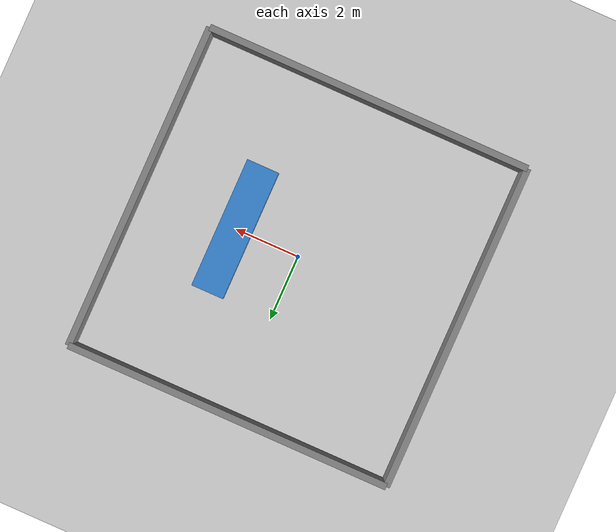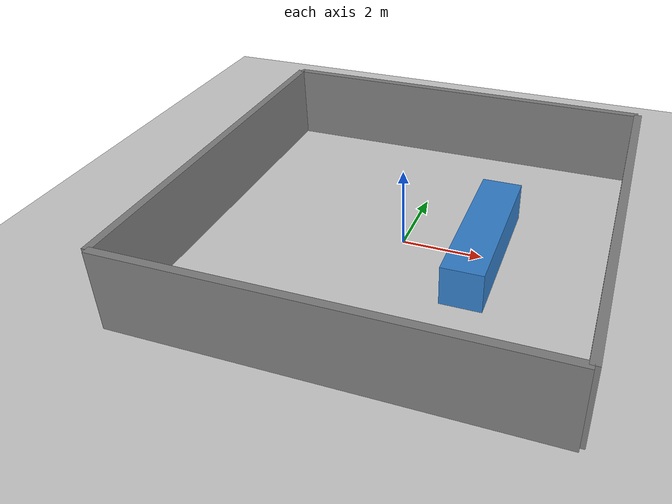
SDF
<?xml version="1.0" ?>
<sdf version="1.8">
  <world name="warehouse">
    <plugin filename="gz-sim-physics-system" name="gz::sim::systems::Physics"/>
    <plugin filename="gz-sim-scene-broadcaster-system" name="gz::sim::systems::SceneBroadcaster"/>
    <plugin filename="gz-sim-user-commands-system" name="gz::sim::systems::UserCommands"/>
    <plugin filename="gz-sim-sensors-system" name="gz::sim::systems::Sensors"><render_engine>ogre2</render_engine></plugin>

    <light type="directional" name="sun">
      <cast_shadows>true</cast_shadows>
      <pose>0 0 10 0 0 0</pose>
      <diffuse>0.8 0.8 0.8 1</diffuse>
      <specular>0.2 0.2 0.2 1</specular>
      <direction>-0.5 0.1 -0.9</direction>
    </light>

    <model name="ground_plane">
      <static>true</static>
      <link name="link">
        <collision name="collision"><geometry><plane><normal>0 0 1</normal><size>100 100</size></plane></geometry></collision>
        <visual name="visual">
          <geometry><plane><normal>0 0 1</normal><size>100 100</size></plane></geometry>
          <material><ambient>0.8 0.8 0.8 1</ambient></material>
        </visual>
      </link>
    </model>

    <model name="shelf_1">
      <static>true</static>
      <pose>2 0 0.5 0 0 0</pose>
      <link name="link">
        <collision name="collision"><geometry><box><size>1 4 1</size></box></geometry></collision>
        <visual name="visual">
          <geometry><box><size>1 4 1</size></box></geometry>
          <material><ambient>0.2 0.5 0.8 1</ambient></material>
        </visual>
      </link>
    </model>

    <model name="wall_north">
      <static>true</static><pose>0 5 1 0 0 0</pose>
      <link name="link"><collision name="c"><geometry><box><size>10 0.2 2</size></box></geometry></collision><visual name="v"><geometry><box><size>10 0.2 2</size></box></geometry><material><ambient>0.5 0.5 0.5 1</ambient></material></visual></link>
    </model>
    <model name="wall_south">
      <static>true</static><pose>0 -5 1 0 0 0</pose>
      <link name="link"><collision name="c"><geometry><box><size>10 0.2 2</size></box></geometry></collision><visual name="v"><geometry><box><size>10 0.2 2</size></box></geometry><material><ambient>0.5 0.5 0.5 1</ambient></material></visual></link>
    </model>
    <model name="wall_east">
      <static>true</static><pose>5 0 1 0 0 0</pose>
      <link name="link"><collision name="c"><geometry><box><size>0.2 10 2</size></box></geometry></collision><visual name="v"><geometry><box><size>0.2 10 2</size></box></geometry><material><ambient>0.5 0.5 0.5 1</ambient></material></visual></link>
    </model>
    <model name="wall_west">
      <static>true</static><pose>-5 0 1 0 0 0</pose>
      <link name="link"><collision name="c"><geometry><box><size>0.2 10 2</size></box></geometry></collision><visual name="v"><geometry><box><size>0.2 10 2</size></box></geometry><material><ambient>0.5 0.5 0.5 1</ambient></material></visual></link>
    </model>
  </world>
</sdf>
